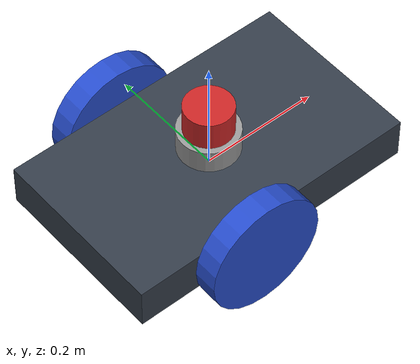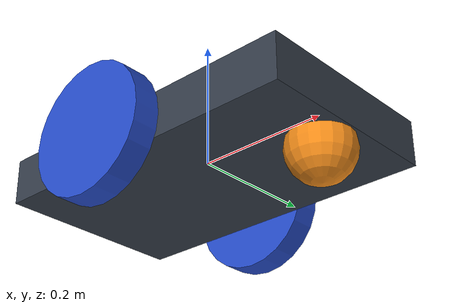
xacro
<?xml version='1.0'?>
<robot name="mybot" xmlns:xacro="http://www.ros.org/wiki/xacro">

  <xacro:property name="package_name" value="mybot_description"/>
  <xacro:property name="robot_name" value="mybot"/>
  <xacro:property name="lidar_base_radius" value="0.05"/>
  <xacro:property name="lidar_base_height" value="0.05"/>
  <xacro:property name="laz_radius" value="0.04"/>
  <xacro:property name="laz_height" value="0.1"/>

  <xacro:include filename="$(find ${package_name})/urdf/mybot_velodyne.gazebo.xacro" />
  <xacro:include filename="$(find ${package_name})/urdf/materials.xacro" />

  <link name="link_chassis">
    <!-- pose and inertial -->
    <pose>0 0 0.1 0 0 0</pose>

    <inertial>
      <mass value="10.0"/>
      <origin rpy="0 0 0" xyz="0 0 0.1"/>
      <inertia
        ixx="0.5" ixy="0" ixz="0"
        iyy="1.0" iyz="0" izz="0.1"/>
    </inertial>

    <!-- body -->
    <collision name="collision_chassis">
      <geometry>
        <box size="0.5 0.3 0.07"/>
      </geometry>
    </collision>

    <visual>
      <origin rpy="0 0 0" xyz="0 0 0"/>
      <geometry>
        <box size="0.5 0.3 0.07"/>
      </geometry>
      <material name="blue"/>
    </visual>

    <!-- spherical caster in body front -->
    <collision name="caster_collision">
      <origin rpy=" 0 0 0" xyz="0.2 0 -0.05"/>
      <geometry>
        <sphere radius="0.05"/>
      </geometry>
      <surface>
        <friction>
          <ode>
            <mu>0</mu>
            <mu2>0</mu2>
            <slip1>1.0</slip1>
            <slip2>1.0</slip2>
          </ode>
        </friction>
      </surface>
    </collision>

    <visual name="caster_visual">
      <origin rpy=" 0 0 0" xyz="0.2 0 -0.05"/>
      <geometry>
        <sphere radius="0.05"/>
      </geometry>
    </visual>
  </link>

  <!-- left rear wheel properties -->
  <link name="link_left_wheel">
    <collision name="link_left_wheel_collision">
      <origin rpy="0 1.5707 1.5707" xyz="0 0 0"/>
      <geometry>
        <cylinder length="0.04" radius="0.1"/>
      </geometry>
    </collision>

    <visual name="link_left_wheel_visual">
      <origin rpy="0 1.5707 1.5707" xyz="0 0 0"/>
      <geometry>
        <cylinder length="0.04" radius="0.1"/>
      </geometry>
    </visual>

    <inertial>
      <mass value="5"/>
      <origin rpy="0 1.5707 1.5707" xyz="0 0 0"/>
      <cylinder_inertia m="5" r="0.1" h="0.04"/>
      <inertia ixx="1.0" ixy="0.0" ixz="0.0"
               iyy="1.0" iyz="0.0" izz="1.0"/>
    </inertial>
  </link>

  <!-- right rear wheel properties -->
  <link name="link_right_wheel">
    <collision name="link_right_wheel_collision">
      <origin rpy="0 1.5707 1.5707" xyz="0 0 0"/>
      <geometry>
        <cylinder length="0.04" radius="0.1"/>
      </geometry>
    </collision>

    <visual name="link_right_wheel_visual">
      <origin rpy="0 1.5707 1.5707" xyz="0 0 0"/>
      <geometry>
        <cylinder length="0.04" radius="0.1"/>
      </geometry>
    </visual>

    <inertial>
      <mass value="5"/>
      <origin rpy="0 1.5707 1.5707" xyz="0 0 0"/>
      <cylinder_inertia m="5" r="0.1" h="0.04"/>
      <inertia ixx="1.0" ixy="0.0" ixz="0.0"
               iyy="1.0" iyz="0.0" izz="1.0"/>
    </inertial>
  </link>

  <joint name="joint_left_wheel" type="continuous">
    <origin rpy="0 0 0" xyz="-0.05 -0.17 0"/>
    <child link="link_left_wheel"/>
    <parent link="link_chassis"/>
    <axis rpy="0 0 0" xyz="0 1 0"/>
    <limit effort="10000" velocity="1000"/>
    <joint_properties damping="1.0" friction="1.0"/>
  </joint>

  <joint name="joint_right_wheel" type="continuous">
    <origin rpy="0 0 0" xyz="-0.05 0.17 0"/>
    <child link="link_right_wheel"/>
    <parent link="link_chassis"/>
    <axis rpy="0 0 0" xyz="0 1 0"/>
    <limit effort="10000" velocity="1000"/>
    <joint_properties damping="1.0" friction="1.0"/>
  </joint>

  <transmission name="left_wheel_transmission">
    <type>transmission_interface/SimpleTransmission</type>
    <joint name="joint_left_wheel">
      <hardwareInterface>hardware_interface/VelocityJointInterface</hardwareInterface>
    </joint>
    <actuator name="left_wheel_actuator">
      <mechanicalReduction>7</mechanicalReduction>
      <hardwareInterface>VelocityJointInterface</hardwareInterface>
    </actuator>
  </transmission>

  <transmission name="right_wheel_transmission">
    <type>transmission_interface/SimpleTransmission</type>
    <joint name="joint_right_wheel">
      <hardwareInterface>hardware_interface/VelocityJointInterface</hardwareInterface>
    </joint>
    <actuator name="right_wheel_actuator">
      <mechanicalReduction>7</mechanicalReduction>
      <hardwareInterface>VelocityJointInterface</hardwareInterface>
    </actuator>
  </transmission>

  <!-- controller requires an extra dummy link that nulls the inertia -->
  <link name="dummy">
  </link>
  <joint name="dummy_joint" type="fixed">
     <parent link="dummy"/>
     <child link="link_chassis"/>
   </joint>

  <!-- Define sensors and attach them to the vehicle chassis -->

  <!-- =============================== LIDAR =============================== -->
  <link name="laz_base">
    <visual>
      <geometry>
        <cylinder length="${lidar_base_height}" radius="${lidar_base_radius}"/>
      </geometry>
    </visual>

    <collision>
      <geometry>
        <cylinder length="${lidar_base_height}" radius="${lidar_base_radius}"/>
      </geometry>
      <surface>
        <friction>
          <ode>
            <mu>0.2</mu>
            <mu2>0.2</mu2>
          </ode>
        </friction>
      </surface>
    </collision>

    <inertial>
      <mass value="0.1"/>
      <inertia ixx="${(1/12) * 0.1 * (3 * lidar_base_radius * lidar_base_radius + lidar_base_height * lidar_base_height)}" ixy="0" ixz="0" iyy="${(1/12) * 0.1 * (3 * lidar_base_radius * lidar_base_radius + lidar_base_height * lidar_base_height)}" iyz="0" izz="${(1/2) * 0.1 * lidar_base_radius * lidar_base_radius}"/>
    </inertial>
  </link>

  <link name="laz_rot">
    <visual>
      <geometry>
        <cylinder length="${laz_height}" radius="${laz_radius}"/>
      </geometry>
    </visual>

    <collision>
      <geometry>
        <cylinder length="${laz_height}" radius="${laz_radius}"/>
      </geometry>
      <surface>
        <friction>
          <ode>
            <mu>0.2</mu>
            <mu2>0.2</mu2>
          </ode>
        </friction>
      </surface>
    </collision>

    <inertial>
      <mass value="0.1"/>
      <inertia ixx="${(1/12) * 0.1 * (3 * laz_radius * laz_radius + laz_height * laz_height)}" ixy="0" ixz="0" iyy="${(1/12) * 0.1 * (3 * laz_radius * laz_radius + laz_height * laz_height)}" iyz="0" izz="${(1/2) * 0.1 * laz_radius * laz_radius}"/>
    </inertial>
  </link>

  <joint name="lazRot" type="continuous">
    <parent link="laz_base"/>
    <child link="laz_rot"/>
    <axis xyz="0 0 1"/>
    <origin xyz = "0 0 ${lidar_base_height/2}"/>
    <dynamics friction="0.1"/>
  </joint>

  <!-- Attach Lidar to the Vehicle Body -->
  <joint name="base_to_lidar" type="continuous">
    <origin xyz="0 0 0.051" rpy="0 0 0"/>
    <axis xyz="0 0 1" />
    <parent link="link_chassis"/>
    <child link="laz_base"/>
  </joint>

  <transmission name="base_to_lidar_trans">
    <type>transmission_interface/SimpleTransmission</type>
    <actuator name="lidar_actuator">
      <mechanicalReduction>1</mechanicalReduction>
    </actuator>
    <joint name="base_to_lidar">
      <hardwareInterface>hardware_interface/EffortJointInterface</hardwareInterface>
    </joint>
  </transmission>

</robot>

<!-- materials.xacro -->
<robot xmlns:xacro="http://ros.org/wiki/xacro">

  <material name="black">
    <color rgba="0.0 0.0 0.0 1.0"/>
  </material>
  <material name="blue">
    <color rgba="0.203125 0.23828125 0.28515625 1.0"/>
  </material>
  <material name="green">
    <color rgba="0.0 0.8 0.0 1.0"/>
  </material>
  <material name="grey">
    <color rgba="0.2 0.2 0.2 1.0"/>
  </material>
  <material name="orange">
    <color rgba="1.0 0.423529411765 0.0392156862745 1.0"/>
  </material>
  <material name="brown">
    <color rgba="0.870588235294 0.811764705882 0.764705882353 1.0"/>
  </material>
  <material name="red">
    <color rgba="0.80078125 0.12890625 0.1328125 1.0"/>
  </material>
  <material name="white">
    <color rgba="1.0 1.0 1.0 1.0"/>
  </material>

</robot>
